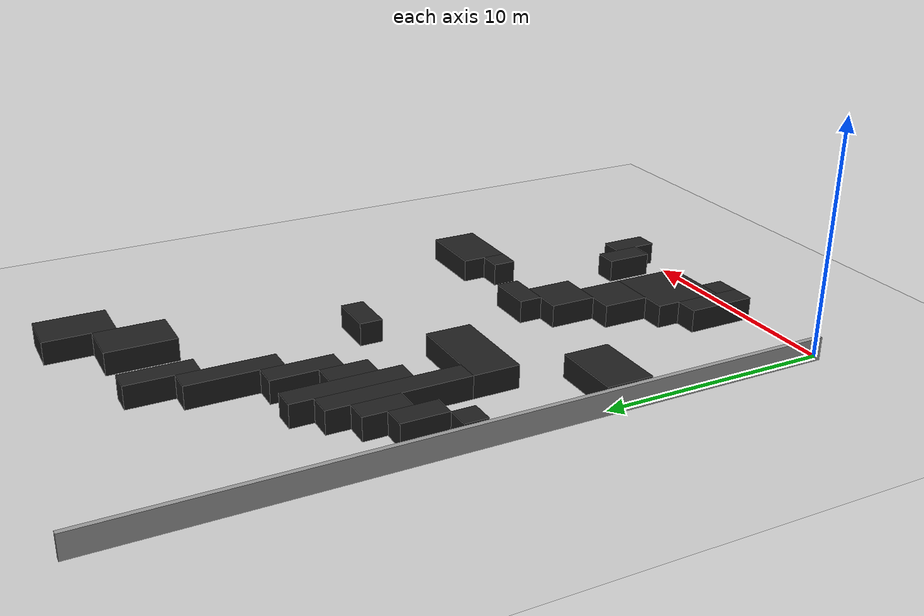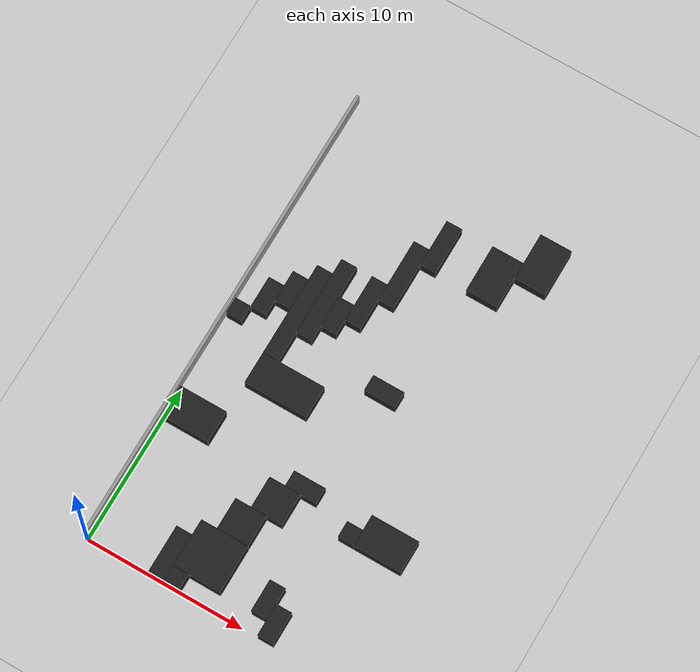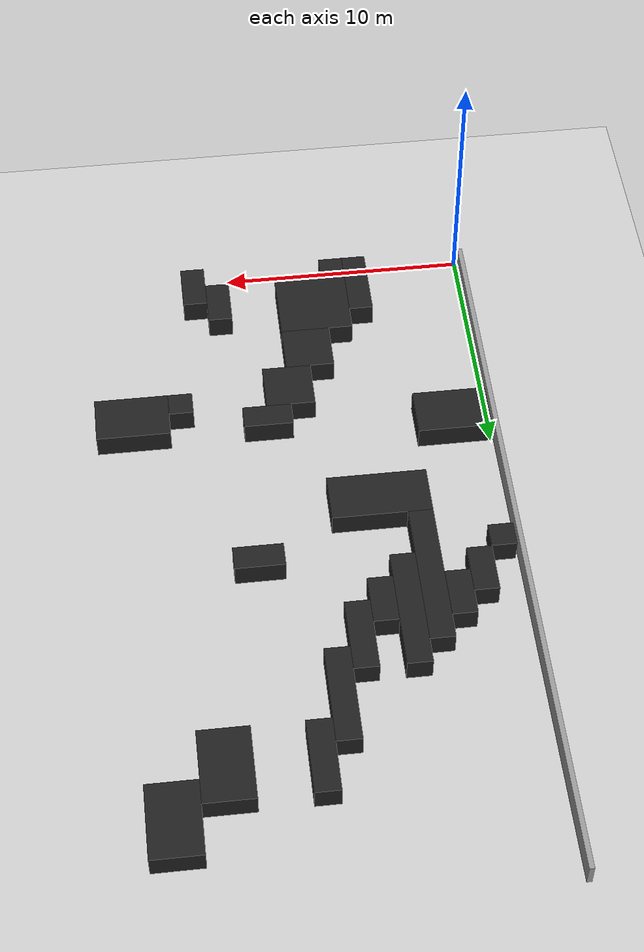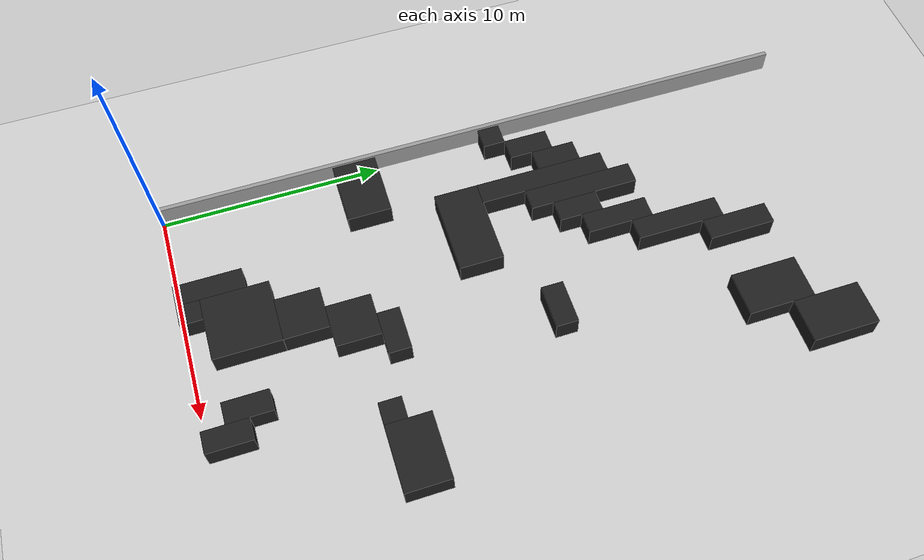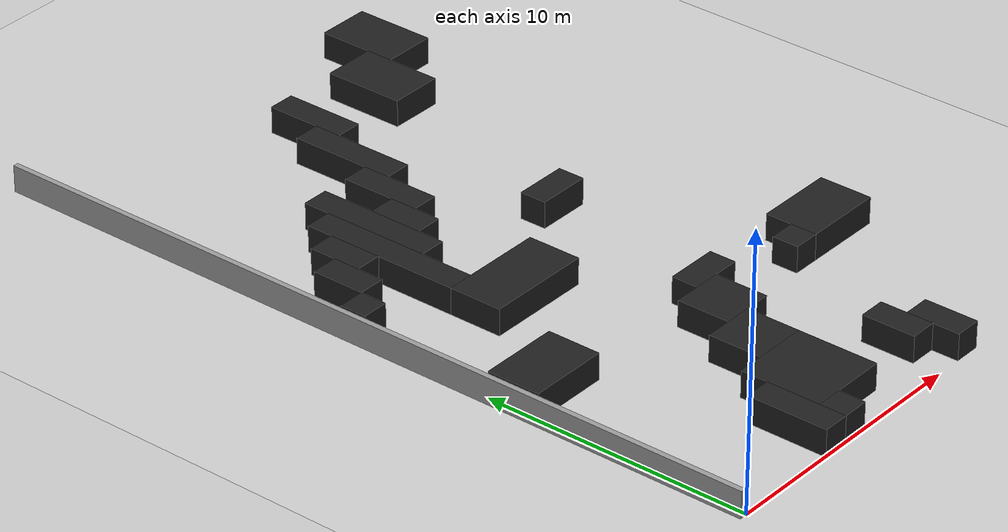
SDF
<sdf version="1.6">
 <world name="default">
  <model name="ground_plane">
   <static>1</static>
   <link name="link">
    <collision name="collision">
     <geometry><plane><normal>0 0 1</normal><size>100 100</size></plane></geometry>
     <surface><friction><ode><mu>100</mu><mu2>50</mu2></ode></friction></surface>
    </collision>
    <visual name="visual">
     <cast_shadows>0</cast_shadows>
     <geometry><plane><normal>0 0 1</normal><size>100 100</size></plane></geometry>
     <material>
      <script><uri>file://media/materials/scripts/gazebo.material</uri><name>Gazebo/Grey</name></script>
     </material>
    </visual>
   </link>
  </model>
  <model name="obstacle1">
   <link name="link_0">
    <inertial>
     <mass>1</mass>
     <inertia>
      <ixx>0.166667</ixx>
      <ixy>0</ixy>
      <ixz>0</ixz>
      <iyy>0.166667</iyy>
      <iyz>0</iyz>
      <izz>0.166667</izz>
     </inertia>
    </inertial>
    <visual name="visual">
     <geometry><box><size>1 3 1</size></box></geometry>
     <material>
      <lighting>1</lighting>
      <script><uri>file://media/materials/scripts/gazebo.material</uri><name>Gazebo/Black</name></script>
      <ambient>0 0 0 1</ambient>
      <diffuse>0 0 0 1</diffuse>
      <specular>0.01 0.01 0.01 1</specular>
      <emissive>0 0 0 1</emissive>
      <shader type="vertex"><normal_map>__default__</normal_map></shader>
     </material>
    </visual>
    <collision name="collision">
     <geometry><box><size>1 3 1</size></box></geometry>
     <surface>
      <friction>
       <ode><mu>5</mu><mu2>5</mu2><fdir1>0 0 0</fdir1><slip1>0</slip1><slip2>0</slip2></ode>
       <torsional>
        <coefficient>1</coefficient>
        <patch_radius>0</patch_radius>
        <surface_radius>0</surface_radius>
        <use_patch_radius>1</use_patch_radius>
        <ode><slip>0</slip></ode>
       </torsional>
      </friction>
      <bounce><restitution_coefficient>0</restitution_coefficient><threshold>1e+06</threshold></bounce>
      <contact>
       <collide_without_contact>0</collide_without_contact>
       <collide_without_contact_bitmask>1</collide_without_contact_bitmask>
       <collide_bitmask>1</collide_bitmask>
       <ode>
        <soft_cfm>0</soft_cfm>
        <soft_erp>0.2</soft_erp>
        <kp>1e+13</kp>
        <kd>1</kd>
        <max_vel>0.01</max_vel>
        <min_depth>0</min_depth>
       </ode>
       <bullet>
        <split_impulse>1</split_impulse>
        <split_impulse_penetration_threshold>-0.01</split_impulse_penetration_threshold>
        <soft_cfm>0</soft_cfm>
        <soft_erp>0.2</soft_erp>
        <kp>1e+13</kp>
        <kd>1</kd>
       </bullet>
      </contact>
     </surface>
    </collision>
   </link>
   <static>0</static>
   <pose>4.5 1.5 0.5 0 -0 0</pose>
  </model>
  <model name="obstacle2">
   <link name="link_0">
    <inertial>
     <mass>1</mass>
     <inertia>
      <ixx>0.166667</ixx>
      <ixy>0</ixy>
      <ixz>0</ixz>
      <iyy>0.166667</iyy>
      <iyz>0</iyz>
      <izz>0.166667</izz>
     </inertia>
    </inertial>
    <visual name="visual">
     <geometry><box><size>1 1 1</size></box></geometry>
     <material>
      <lighting>1</lighting>
      <script><uri>file://media/materials/scripts/gazebo.material</uri><name>Gazebo/Black</name></script>
      <ambient>0 0 0 1</ambient>
      <diffuse>0 0 0 1</diffuse>
      <specular>0.01 0.01 0.01 1</specular>
      <emissive>0 0 0 1</emissive>
      <shader type="vertex"><normal_map>__default__</normal_map></shader>
     </material>
    </visual>
    <collision name="collision">
     <geometry><box><size>1 1 1</size></box></geometry>
     <surface>
      <friction>
       <ode><mu>5</mu><mu2>5</mu2><fdir1>0 0 0</fdir1><slip1>0</slip1><slip2>0</slip2></ode>
       <torsional>
        <coefficient>1</coefficient>
        <patch_radius>0</patch_radius>
        <surface_radius>0</surface_radius>
        <use_patch_radius>1</use_patch_radius>
        <ode><slip>0</slip></ode>
       </torsional>
      </friction>
      <bounce><restitution_coefficient>0</restitution_coefficient><threshold>1e+06</threshold></bounce>
      <contact>
       <collide_without_contact>0</collide_without_contact>
       <collide_without_contact_bitmask>1</collide_without_contact_bitmask>
       <collide_bitmask>1</collide_bitmask>
       <ode>
        <soft_cfm>0</soft_cfm>
        <soft_erp>0.2</soft_erp>
        <kp>1e+13</kp>
        <kd>1</kd>
        <max_vel>0.01</max_vel>
        <min_depth>0</min_depth>
       </ode>
       <bullet>
        <split_impulse>1</split_impulse>
        <split_impulse_penetration_threshold>-0.01</split_impulse_penetration_threshold>
        <soft_cfm>0</soft_cfm>
        <soft_erp>0.2</soft_erp>
        <kp>1e+13</kp>
        <kd>1</kd>
       </bullet>
      </contact>
     </surface>
    </collision>
   </link>
   <static>0</static>
   <pose>5.5 0.5 0.5 0 -0 0</pose>
  </model>
  <model name="obstacle3">
   <link name="link_0">
    <inertial>
     <mass>1</mass>
     <inertia>
      <ixx>0.166667</ixx>
      <ixy>0</ixy>
      <ixz>0</ixz>
      <iyy>0.166667</iyy>
      <iyz>0</iyz>
      <izz>0.166667</izz>
     </inertia>
    </inertial>
    <visual name="visual">
     <geometry><box><size>3 3 1</size></box></geometry>
     <material>
      <lighting>1</lighting>
      <script><uri>file://media/materials/scripts/gazebo.material</uri><name>Gazebo/Black</name></script>
      <ambient>0 0 0 1</ambient>
      <diffuse>0 0 0 1</diffuse>
      <specular>0.01 0.01 0.01 1</specular>
      <emissive>0 0 0 1</emissive>
      <shader type="vertex"><normal_map>__default__</normal_map></shader>
     </material>
    </visual>
    <collision name="collision">
     <geometry><box><size>3 3 1</size></box></geometry>
     <surface>
      <friction>
       <ode><mu>5</mu><mu2>5</mu2><fdir1>0 0 0</fdir1><slip1>0</slip1><slip2>0</slip2></ode>
       <torsional>
        <coefficient>1</coefficient>
        <patch_radius>0</patch_radius>
        <surface_radius>0</surface_radius>
        <use_patch_radius>1</use_patch_radius>
        <ode><slip>0</slip></ode>
       </torsional>
      </friction>
      <bounce><restitution_coefficient>0</restitution_coefficient><threshold>1e+06</threshold></bounce>
      <contact>
       <collide_without_contact>0</collide_without_contact>
       <collide_without_contact_bitmask>1</collide_without_contact_bitmask>
       <collide_bitmask>1</collide_bitmask>
       <ode>
        <soft_cfm>0</soft_cfm>
        <soft_erp>0.2</soft_erp>
        <kp>1e+13</kp>
        <kd>1</kd>
        <max_vel>0.01</max_vel>
        <min_depth>0</min_depth>
       </ode>
       <bullet>
        <split_impulse>1</split_impulse>
        <split_impulse_penetration_threshold>-0.01</split_impulse_penetration_threshold>
        <soft_cfm>0</soft_cfm>
        <soft_erp>0.2</soft_erp>
        <kp>1e+13</kp>
        <kd>1</kd>
       </bullet>
      </contact>
     </surface>
    </collision>
   </link>
   <static>0</static>
   <pose>6.5 2.5 0.5 0 -0 0</pose>
  </model>
  <model name="obstacle4">
   <link name="link_0">
    <inertial>
     <mass>1</mass>
     <inertia>
      <ixx>0.166667</ixx>
      <ixy>0</ixy>
      <ixz>0</ixz>
      <iyy>0.166667</iyy>
      <iyz>0</iyz>
      <izz>0.166667</izz>
     </inertia>
    </inertial>
    <visual name="visual">
     <geometry><box><size>2 2 1</size></box></geometry>
     <material>
      <lighting>1</lighting>
      <script><uri>file://media/materials/scripts/gazebo.material</uri><name>Gazebo/Black</name></script>
      <ambient>0 0 0 1</ambient>
      <diffuse>0 0 0 1</diffuse>
      <specular>0.01 0.01 0.01 1</specular>
      <emissive>0 0 0 1</emissive>
      <shader type="vertex"><normal_map>__default__</normal_map></shader>
     </material>
    </visual>
    <collision name="collision">
     <geometry><box><size>2 2 1</size></box></geometry>
     <surface>
      <friction>
       <ode><mu>5</mu><mu2>5</mu2><fdir1>0 0 0</fdir1><slip1>0</slip1><slip2>0</slip2></ode>
       <torsional>
        <coefficient>1</coefficient>
        <patch_radius>0</patch_radius>
        <surface_radius>0</surface_radius>
        <use_patch_radius>1</use_patch_radius>
        <ode><slip>0</slip></ode>
       </torsional>
      </friction>
      <bounce><restitution_coefficient>0</restitution_coefficient><threshold>1e+06</threshold></bounce>
      <contact>
       <collide_without_contact>0</collide_without_contact>
       <collide_without_contact_bitmask>1</collide_without_contact_bitmask>
       <collide_bitmask>1</collide_bitmask>
       <ode>
        <soft_cfm>0</soft_cfm>
        <soft_erp>0.2</soft_erp>
        <kp>1e+13</kp>
        <kd>1</kd>
        <max_vel>0.01</max_vel>
        <min_depth>0</min_depth>
       </ode>
       <bullet>
        <split_impulse>1</split_impulse>
        <split_impulse_penetration_threshold>-0.01</split_impulse_penetration_threshold>
        <soft_cfm>0</soft_cfm>
        <soft_erp>0.2</soft_erp>
        <kp>1e+13</kp>
        <kd>1</kd>
       </bullet>
      </contact>
     </surface>
    </collision>
   </link>
   <static>0</static>
   <pose>7.0 5.0 0.5 0 -0 0</pose>
  </model>
  <model name="obstacle5">
   <link name="link_0">
    <inertial>
     <mass>1</mass>
     <inertia>
      <ixx>0.166667</ixx>
      <ixy>0</ixy>
      <ixz>0</ixz>
      <iyy>0.166667</iyy>
      <iyz>0</iyz>
      <izz>0.166667</izz>
     </inertia>
    </inertial>
    <visual name="visual">
     <geometry><box><size>2 2 1</size></box></geometry>
     <material>
      <lighting>1</lighting>
      <script><uri>file://media/materials/scripts/gazebo.material</uri><name>Gazebo/Black</name></script>
      <ambient>0 0 0 1</ambient>
      <diffuse>0 0 0 1</diffuse>
      <specular>0.01 0.01 0.01 1</specular>
      <emissive>0 0 0 1</emissive>
      <shader type="vertex"><normal_map>__default__</normal_map></shader>
     </material>
    </visual>
    <collision name="collision">
     <geometry><box><size>2 2 1</size></box></geometry>
     <surface>
      <friction>
       <ode><mu>5</mu><mu2>5</mu2><fdir1>0 0 0</fdir1><slip1>0</slip1><slip2>0</slip2></ode>
       <torsional>
        <coefficient>1</coefficient>
        <patch_radius>0</patch_radius>
        <surface_radius>0</surface_radius>
        <use_patch_radius>1</use_patch_radius>
        <ode><slip>0</slip></ode>
       </torsional>
      </friction>
      <bounce><restitution_coefficient>0</restitution_coefficient><threshold>1e+06</threshold></bounce>
      <contact>
       <collide_without_contact>0</collide_without_contact>
       <collide_without_contact_bitmask>1</collide_without_contact_bitmask>
       <collide_bitmask>1</collide_bitmask>
       <ode>
        <soft_cfm>0</soft_cfm>
        <soft_erp>0.2</soft_erp>
        <kp>1e+13</kp>
        <kd>1</kd>
        <max_vel>0.01</max_vel>
        <min_depth>0</min_depth>
       </ode>
       <bullet>
        <split_impulse>1</split_impulse>
        <split_impulse_penetration_threshold>-0.01</split_impulse_penetration_threshold>
        <soft_cfm>0</soft_cfm>
        <soft_erp>0.2</soft_erp>
        <kp>1e+13</kp>
        <kd>1</kd>
       </bullet>
      </contact>
     </surface>
    </collision>
   </link>
   <static>0</static>
   <pose>8.0 7.0 0.5 0 -0 0</pose>
  </model>
  <model name="obstacle6">
   <link name="link_0">
    <inertial>
     <mass>1</mass>
     <inertia>
      <ixx>0.166667</ixx>
      <ixy>0</ixy>
      <ixz>0</ixz>
      <iyy>0.166667</iyy>
      <iyz>0</iyz>
      <izz>0.166667</izz>
     </inertia>
    </inertial>
    <visual name="visual">
     <geometry><box><size>2 1 1</size></box></geometry>
     <material>
      <lighting>1</lighting>
      <script><uri>file://media/materials/scripts/gazebo.material</uri><name>Gazebo/Black</name></script>
      <ambient>0 0 0 1</ambient>
      <diffuse>0 0 0 1</diffuse>
      <specular>0.01 0.01 0.01 1</specular>
      <emissive>0 0 0 1</emissive>
      <shader type="vertex"><normal_map>__default__</normal_map></shader>
     </material>
    </visual>
    <collision name="collision">
     <geometry><box><size>2 1 1</size></box></geometry>
     <surface>
      <friction>
       <ode><mu>5</mu><mu2>5</mu2><fdir1>0 0 0</fdir1><slip1>0</slip1><slip2>0</slip2></ode>
       <torsional>
        <coefficient>1</coefficient>
        <patch_radius>0</patch_radius>
        <surface_radius>0</surface_radius>
        <use_patch_radius>1</use_patch_radius>
        <ode><slip>0</slip></ode>
       </torsional>
      </friction>
      <bounce><restitution_coefficient>0</restitution_coefficient><threshold>1e+06</threshold></bounce>
      <contact>
       <collide_without_contact>0</collide_without_contact>
       <collide_without_contact_bitmask>1</collide_without_contact_bitmask>
       <collide_bitmask>1</collide_bitmask>
       <ode>
        <soft_cfm>0</soft_cfm>
        <soft_erp>0.2</soft_erp>
        <kp>1e+13</kp>
        <kd>1</kd>
        <max_vel>0.01</max_vel>
        <min_depth>0</min_depth>
       </ode>
       <bullet>
        <split_impulse>1</split_impulse>
        <split_impulse_penetration_threshold>-0.01</split_impulse_penetration_threshold>
        <soft_cfm>0</soft_cfm>
        <soft_erp>0.2</soft_erp>
        <kp>1e+13</kp>
        <kd>1</kd>
       </bullet>
      </contact>
     </surface>
    </collision>
   </link>
   <static>0</static>
   <pose>9.0 8.5 0.5 0 -0 0</pose>
  </model>
  <model name="obstacle7">
   <link name="link_0">
    <inertial>
     <mass>1</mass>
     <inertia>
      <ixx>0.166667</ixx>
      <ixy>0</ixy>
      <ixz>0</ixz>
      <iyy>0.166667</iyy>
      <iyz>0</iyz>
      <izz>0.166667</izz>
     </inertia>
    </inertial>
    <visual name="visual">
     <geometry><box><size>1 2 1</size></box></geometry>
     <material>
      <lighting>1</lighting>
      <script><uri>file://media/materials/scripts/gazebo.material</uri><name>Gazebo/Black</name></script>
      <ambient>0 0 0 1</ambient>
      <diffuse>0 0 0 1</diffuse>
      <specular>0.01 0.01 0.01 1</specular>
      <emissive>0 0 0 1</emissive>
      <shader type="vertex"><normal_map>__default__</normal_map></shader>
     </material>
    </visual>
    <collision name="collision">
     <geometry><box><size>1 2 1</size></box></geometry>
     <surface>
      <friction>
       <ode><mu>5</mu><mu2>5</mu2><fdir1>0 0 0</fdir1><slip1>0</slip1><slip2>0</slip2></ode>
       <torsional>
        <coefficient>1</coefficient>
        <patch_radius>0</patch_radius>
        <surface_radius>0</surface_radius>
        <use_patch_radius>1</use_patch_radius>
        <ode><slip>0</slip></ode>
       </torsional>
      </friction>
      <bounce><restitution_coefficient>0</restitution_coefficient><threshold>1e+06</threshold></bounce>
      <contact>
       <collide_without_contact>0</collide_without_contact>
       <collide_without_contact_bitmask>1</collide_without_contact_bitmask>
       <collide_bitmask>1</collide_bitmask>
       <ode>
        <soft_cfm>0</soft_cfm>
        <soft_erp>0.2</soft_erp>
        <kp>1e+13</kp>
        <kd>1</kd>
        <max_vel>0.01</max_vel>
        <min_depth>0</min_depth>
       </ode>
       <bullet>
        <split_impulse>1</split_impulse>
        <split_impulse_penetration_threshold>-0.01</split_impulse_penetration_threshold>
        <soft_cfm>0</soft_cfm>
        <soft_erp>0.2</soft_erp>
        <kp>1e+13</kp>
        <kd>1</kd>
       </bullet>
      </contact>
     </surface>
    </collision>
   </link>
   <static>0</static>
   <pose>10.5 2.0 0.5 0 -0 0</pose>
  </model>
  <model name="obstacle8">
   <link name="link_0">
    <inertial>
     <mass>1</mass>
     <inertia>
      <ixx>0.166667</ixx>
      <ixy>0</ixy>
      <ixz>0</ixz>
      <iyy>0.166667</iyy>
      <iyz>0</iyz>
      <izz>0.166667</izz>
     </inertia>
    </inertial>
    <visual name="visual">
     <geometry><box><size>1 2 1</size></box></geometry>
     <material>
      <lighting>1</lighting>
      <script><uri>file://media/materials/scripts/gazebo.material</uri><name>Gazebo/Black</name></script>
      <ambient>0 0 0 1</ambient>
      <diffuse>0 0 0 1</diffuse>
      <specular>0.01 0.01 0.01 1</specular>
      <emissive>0 0 0 1</emissive>
      <shader type="vertex"><normal_map>__default__</normal_map></shader>
     </material>
    </visual>
    <collision name="collision">
     <geometry><box><size>1 2 1</size></box></geometry>
     <surface>
      <friction>
       <ode><mu>5</mu><mu2>5</mu2><fdir1>0 0 0</fdir1><slip1>0</slip1><slip2>0</slip2></ode>
       <torsional>
        <coefficient>1</coefficient>
        <patch_radius>0</patch_radius>
        <surface_radius>0</surface_radius>
        <use_patch_radius>1</use_patch_radius>
        <ode><slip>0</slip></ode>
       </torsional>
      </friction>
      <bounce><restitution_coefficient>0</restitution_coefficient><threshold>1e+06</threshold></bounce>
      <contact>
       <collide_without_contact>0</collide_without_contact>
       <collide_without_contact_bitmask>1</collide_without_contact_bitmask>
       <collide_bitmask>1</collide_bitmask>
       <ode>
        <soft_cfm>0</soft_cfm>
        <soft_erp>0.2</soft_erp>
        <kp>1e+13</kp>
        <kd>1</kd>
        <max_vel>0.01</max_vel>
        <min_depth>0</min_depth>
       </ode>
       <bullet>
        <split_impulse>1</split_impulse>
        <split_impulse_penetration_threshold>-0.01</split_impulse_penetration_threshold>
        <soft_cfm>0</soft_cfm>
        <soft_erp>0.2</soft_erp>
        <kp>1e+13</kp>
        <kd>1</kd>
       </bullet>
      </contact>
     </surface>
    </collision>
   </link>
   <static>0</static>
   <pose>11.5 1.0 0.5 0 -0 0</pose>
  </model>
  <model name="obstacle11">
   <link name="link_0">
    <inertial>
     <mass>1</mass>
     <inertia>
      <ixx>0.166667</ixx>
      <ixy>0</ixy>
      <ixz>0</ixz>
      <iyy>0.166667</iyy>
      <iyz>0</iyz>
      <izz>0.166667</izz>
     </inertia>
    </inertial>
    <visual name="visual">
     <geometry><box><size>3 2 1</size></box></geometry>
     <material>
      <lighting>1</lighting>
      <script><uri>file://media/materials/scripts/gazebo.material</uri><name>Gazebo/Black</name></script>
      <ambient>0 0 0 1</ambient>
      <diffuse>0 0 0 1</diffuse>
      <specular>0.01 0.01 0.01 1</specular>
      <emissive>0 0 0 1</emissive>
      <shader type="vertex"><normal_map>__default__</normal_map></shader>
     </material>
    </visual>
    <collision name="collision">
     <geometry><box><size>3 2 1</size></box></geometry>
     <surface>
      <friction>
       <ode><mu>5</mu><mu2>5</mu2><fdir1>0 0 0</fdir1><slip1>0</slip1><slip2>0</slip2></ode>
       <torsional>
        <coefficient>1</coefficient>
        <patch_radius>0</patch_radius>
        <surface_radius>0</surface_radius>
        <use_patch_radius>1</use_patch_radius>
        <ode><slip>0</slip></ode>
       </torsional>
      </friction>
      <bounce><restitution_coefficient>0</restitution_coefficient><threshold>1e+06</threshold></bounce>
      <contact>
       <collide_without_contact>0</collide_without_contact>
       <collide_without_contact_bitmask>1</collide_without_contact_bitmask>
       <collide_bitmask>1</collide_bitmask>
       <ode>
        <soft_cfm>0</soft_cfm>
        <soft_erp>0.2</soft_erp>
        <kp>1e+13</kp>
        <kd>1</kd>
        <max_vel>0.01</max_vel>
        <min_depth>0</min_depth>
       </ode>
       <bullet>
        <split_impulse>1</split_impulse>
        <split_impulse_penetration_threshold>-0.01</split_impulse_penetration_threshold>
        <soft_cfm>0</soft_cfm>
        <soft_erp>0.2</soft_erp>
        <kp>1e+13</kp>
        <kd>1</kd>
       </bullet>
      </contact>
     </surface>
    </collision>
   </link>
   <static>0</static>
   <pose>1.5 9.0 0.5 0 -0 0</pose>
  </model>
  <model name="obstacle12">
   <link name="link_0">
    <inertial>
     <mass>1</mass>
     <inertia>
      <ixx>0.166667</ixx>
      <ixy>0</ixy>
      <ixz>0</ixz>
      <iyy>0.166667</iyy>
      <iyz>0</iyz>
      <izz>0.166667</izz>
     </inertia>
    </inertial>
    <visual name="visual">
     <geometry><box><size>1 1 1</size></box></geometry>
     <material>
      <lighting>1</lighting>
      <script><uri>file://media/materials/scripts/gazebo.material</uri><name>Gazebo/Black</name></script>
      <ambient>0 0 0 1</ambient>
      <diffuse>0 0 0 1</diffuse>
      <specular>0.01 0.01 0.01 1</specular>
      <emissive>0 0 0 1</emissive>
      <shader type="vertex"><normal_map>__default__</normal_map></shader>
     </material>
    </visual>
    <collision name="collision">
     <geometry><box><size>1 1 1</size></box></geometry>
     <surface>
      <friction>
       <ode><mu>5</mu><mu2>5</mu2><fdir1>0 0 0</fdir1><slip1>0</slip1><slip2>0</slip2></ode>
       <torsional>
        <coefficient>1</coefficient>
        <patch_radius>0</patch_radius>
        <surface_radius>0</surface_radius>
        <use_patch_radius>1</use_patch_radius>
        <ode><slip>0</slip></ode>
       </torsional>
      </friction>
      <bounce><restitution_coefficient>0</restitution_coefficient><threshold>1e+06</threshold></bounce>
      <contact>
       <collide_without_contact>0</collide_without_contact>
       <collide_without_contact_bitmask>1</collide_without_contact_bitmask>
       <collide_bitmask>1</collide_bitmask>
       <ode>
        <soft_cfm>0</soft_cfm>
        <soft_erp>0.2</soft_erp>
        <kp>1e+13</kp>
        <kd>1</kd>
        <max_vel>0.01</max_vel>
        <min_depth>0</min_depth>
       </ode>
       <bullet>
        <split_impulse>1</split_impulse>
        <split_impulse_penetration_threshold>-0.01</split_impulse_penetration_threshold>
        <soft_cfm>0</soft_cfm>
        <soft_erp>0.2</soft_erp>
        <kp>1e+13</kp>
        <kd>1</kd>
       </bullet>
      </contact>
     </surface>
    </collision>
   </link>
   <static>0</static>
   <pose>12.5 7.5 0.5 0 -0 0</pose>
  </model>
  <model name="obstacle13">
   <link name="link_0">
    <inertial>
     <mass>1</mass>
     <inertia>
      <ixx>0.166667</ixx>
      <ixy>0</ixy>
      <ixz>0</ixz>
      <iyy>0.166667</iyy>
      <iyz>0</iyz>
      <izz>0.166667</izz>
     </inertia>
    </inertial>
    <visual name="visual">
     <geometry><box><size>3 2 1</size></box></geometry>
     <material>
      <lighting>1</lighting>
      <script><uri>file://media/materials/scripts/gazebo.material</uri><name>Gazebo/Black</name></script>
      <ambient>0 0 0 1</ambient>
      <diffuse>0 0 0 1</diffuse>
      <specular>0.01 0.01 0.01 1</specular>
      <emissive>0 0 0 1</emissive>
      <shader type="vertex"><normal_map>__default__</normal_map></shader>
     </material>
    </visual>
    <collision name="collision">
     <geometry><box><size>3 2 1</size></box></geometry>
     <surface>
      <friction>
       <ode><mu>5</mu><mu2>5</mu2><fdir1>0 0 0</fdir1><slip1>0</slip1><slip2>0</slip2></ode>
       <torsional>
        <coefficient>1</coefficient>
        <patch_radius>0</patch_radius>
        <surface_radius>0</surface_radius>
        <use_patch_radius>1</use_patch_radius>
        <ode><slip>0</slip></ode>
       </torsional>
      </friction>
      <bounce><restitution_coefficient>0</restitution_coefficient><threshold>1e+06</threshold></bounce>
      <contact>
       <collide_without_contact>0</collide_without_contact>
       <collide_without_contact_bitmask>1</collide_without_contact_bitmask>
       <collide_bitmask>1</collide_bitmask>
       <ode>
        <soft_cfm>0</soft_cfm>
        <soft_erp>0.2</soft_erp>
        <kp>1e+13</kp>
        <kd>1</kd>
        <max_vel>0.01</max_vel>
        <min_depth>0</min_depth>
       </ode>
       <bullet>
        <split_impulse>1</split_impulse>
        <split_impulse_penetration_threshold>-0.01</split_impulse_penetration_threshold>
        <soft_cfm>0</soft_cfm>
        <soft_erp>0.2</soft_erp>
        <kp>1e+13</kp>
        <kd>1</kd>
       </bullet>
      </contact>
     </surface>
    </collision>
   </link>
   <static>0</static>
   <pose>14.5 8.0 0.5 0 -0 0</pose>
  </model>
  <model name="obstacle16">
   <link name="link_0">
    <inertial>
     <mass>1</mass>
     <inertia>
      <ixx>0.166667</ixx>
      <ixy>0</ixy>
      <ixz>0</ixz>
      <iyy>0.166667</iyy>
      <iyz>0</iyz>
      <izz>0.166667</izz>
     </inertia>
    </inertial>
    <visual name="visual">
     <geometry><box><size>1 1 1</size></box></geometry>
     <material>
      <lighting>1</lighting>
      <script><uri>file://media/materials/scripts/gazebo.material</uri><name>Gazebo/Black</name></script>
      <ambient>0 0 0 1</ambient>
      <diffuse>0 0 0 1</diffuse>
      <specular>0.01 0.01 0.01 1</specular>
      <emissive>0 0 0 1</emissive>
      <shader type="vertex"><normal_map>__default__</normal_map></shader>
     </material>
    </visual>
    <collision name="collision">
     <geometry><box><size>1 1 1</size></box></geometry>
     <surface>
      <friction>
       <ode><mu>5</mu><mu2>5</mu2><fdir1>0 0 0</fdir1><slip1>0</slip1><slip2>0</slip2></ode>
       <torsional>
        <coefficient>1</coefficient>
        <patch_radius>0</patch_radius>
        <surface_radius>0</surface_radius>
        <use_patch_radius>1</use_patch_radius>
        <ode><slip>0</slip></ode>
       </torsional>
      </friction>
      <bounce><restitution_coefficient>0</restitution_coefficient><threshold>1e+06</threshold></bounce>
      <contact>
       <collide_without_contact>0</collide_without_contact>
       <collide_without_contact_bitmask>1</collide_without_contact_bitmask>
       <collide_bitmask>1</collide_bitmask>
       <ode>
        <soft_cfm>0</soft_cfm>
        <soft_erp>0.2</soft_erp>
        <kp>1e+13</kp>
        <kd>1</kd>
        <max_vel>0.01</max_vel>
        <min_depth>0</min_depth>
       </ode>
       <bullet>
        <split_impulse>1</split_impulse>
        <split_impulse_penetration_threshold>-0.01</split_impulse_penetration_threshold>
        <soft_cfm>0</soft_cfm>
        <soft_erp>0.2</soft_erp>
        <kp>1e+13</kp>
        <kd>1</kd>
       </bullet>
      </contact>
     </surface>
    </collision>
   </link>
   <static>0</static>
   <pose>0.5 15.5 0.5 0 -0 0</pose>
  </model>
  <model name="obstacle17">
   <link name="link_0">
    <inertial>
     <mass>1</mass>
     <inertia>
      <ixx>0.166667</ixx>
      <ixy>0</ixy>
      <ixz>0</ixz>
      <iyy>0.166667</iyy>
      <iyz>0</iyz>
      <izz>0.166667</izz>
     </inertia>
    </inertial>
    <visual name="visual">
     <geometry><box><size>1 2 1</size></box></geometry>
     <material>
      <lighting>1</lighting>
      <script><uri>file://media/materials/scripts/gazebo.material</uri><name>Gazebo/Black</name></script>
      <ambient>0 0 0 1</ambient>
      <diffuse>0 0 0 1</diffuse>
      <specular>0.01 0.01 0.01 1</specular>
      <emissive>0 0 0 1</emissive>
      <shader type="vertex"><normal_map>__default__</normal_map></shader>
     </material>
    </visual>
    <collision name="collision">
     <geometry><box><size>1 2 1</size></box></geometry>
     <surface>
      <friction>
       <ode><mu>5</mu><mu2>5</mu2><fdir1>0 0 0</fdir1><slip1>0</slip1><slip2>0</slip2></ode>
       <torsional>
        <coefficient>1</coefficient>
        <patch_radius>0</patch_radius>
        <surface_radius>0</surface_radius>
        <use_patch_radius>1</use_patch_radius>
        <ode><slip>0</slip></ode>
       </torsional>
      </friction>
      <bounce><restitution_coefficient>0</restitution_coefficient><threshold>1e+06</threshold></bounce>
      <contact>
       <collide_without_contact>0</collide_without_contact>
       <collide_without_contact_bitmask>1</collide_without_contact_bitmask>
       <collide_bitmask>1</collide_bitmask>
       <ode>
        <soft_cfm>0</soft_cfm>
        <soft_erp>0.2</soft_erp>
        <kp>1e+13</kp>
        <kd>1</kd>
        <max_vel>0.01</max_vel>
        <min_depth>0</min_depth>
       </ode>
       <bullet>
        <split_impulse>1</split_impulse>
        <split_impulse_penetration_threshold>-0.01</split_impulse_penetration_threshold>
        <soft_cfm>0</soft_cfm>
        <soft_erp>0.2</soft_erp>
        <kp>1e+13</kp>
        <kd>1</kd>
       </bullet>
      </contact>
     </surface>
    </collision>
   </link>
   <static>0</static>
   <pose>1.5 17.0 0.5 0 -0 0</pose>
  </model>
  <model name="obstacle18">
   <link name="link_0">
    <inertial>
     <mass>1</mass>
     <inertia>
      <ixx>0.166667</ixx>
      <ixy>0</ixy>
      <ixz>0</ixz>
      <iyy>0.166667</iyy>
      <iyz>0</iyz>
      <izz>0.166667</izz>
     </inertia>
    </inertial>
    <visual name="visual">
     <geometry><box><size>1 2 1</size></box></geometry>
     <material>
      <lighting>1</lighting>
      <script><uri>file://media/materials/scripts/gazebo.material</uri><name>Gazebo/Black</name></script>
      <ambient>0 0 0 1</ambient>
      <diffuse>0 0 0 1</diffuse>
      <specular>0.01 0.01 0.01 1</specular>
      <emissive>0 0 0 1</emissive>
      <shader type="vertex"><normal_map>__default__</normal_map></shader>
     </material>
    </visual>
    <collision name="collision">
     <geometry><box><size>1 2 1</size></box></geometry>
     <surface>
      <friction>
       <ode><mu>5</mu><mu2>5</mu2><fdir1>0 0 0</fdir1><slip1>0</slip1><slip2>0</slip2></ode>
       <torsional>
        <coefficient>1</coefficient>
        <patch_radius>0</patch_radius>
        <surface_radius>0</surface_radius>
        <use_patch_radius>1</use_patch_radius>
        <ode><slip>0</slip></ode>
       </torsional>
      </friction>
      <bounce><restitution_coefficient>0</restitution_coefficient><threshold>1e+06</threshold></bounce>
      <contact>
       <collide_without_contact>0</collide_without_contact>
       <collide_without_contact_bitmask>1</collide_without_contact_bitmask>
       <collide_bitmask>1</collide_bitmask>
       <ode>
        <soft_cfm>0</soft_cfm>
        <soft_erp>0.2</soft_erp>
        <kp>1e+13</kp>
        <kd>1</kd>
        <max_vel>0.01</max_vel>
        <min_depth>0</min_depth>
       </ode>
       <bullet>
        <split_impulse>1</split_impulse>
        <split_impulse_penetration_threshold>-0.01</split_impulse_penetration_threshold>
        <soft_cfm>0</soft_cfm>
        <soft_erp>0.2</soft_erp>
        <kp>1e+13</kp>
        <kd>1</kd>
       </bullet>
      </contact>
     </surface>
    </collision>
   </link>
   <static>0</static>
   <pose>2.5 18.0 0.5 0 -0 0</pose>
  </model>
  <model name="obstacle19">
   <link name="link_0">
    <inertial>
     <mass>1</mass>
     <inertia>
      <ixx>0.166667</ixx>
      <ixy>0</ixy>
      <ixz>0</ixz>
      <iyy>0.166667</iyy>
      <iyz>0</iyz>
      <izz>0.166667</izz>
     </inertia>
    </inertial>
    <visual name="visual">
     <geometry><box><size>4 2 1</size></box></geometry>
     <material>
      <lighting>1</lighting>
      <script><uri>file://media/materials/scripts/gazebo.material</uri><name>Gazebo/Black</name></script>
      <ambient>0 0 0 1</ambient>
      <diffuse>0 0 0 1</diffuse>
      <specular>0.01 0.01 0.01 1</specular>
      <emissive>0 0 0 1</emissive>
      <shader type="vertex"><normal_map>__default__</normal_map></shader>
     </material>
    </visual>
    <collision name="collision">
     <geometry><box><size>4 2 1</size></box></geometry>
     <surface>
      <friction>
       <ode><mu>5</mu><mu2>5</mu2><fdir1>0 0 0</fdir1><slip1>0</slip1><slip2>0</slip2></ode>
       <torsional>
        <coefficient>1</coefficient>
        <patch_radius>0</patch_radius>
        <surface_radius>0</surface_radius>
        <use_patch_radius>1</use_patch_radius>
        <ode><slip>0</slip></ode>
       </torsional>
      </friction>
      <bounce><restitution_coefficient>0</restitution_coefficient><threshold>1e+06</threshold></bounce>
      <contact>
       <collide_without_contact>0</collide_without_contact>
       <collide_without_contact_bitmask>1</collide_without_contact_bitmask>
       <collide_bitmask>1</collide_bitmask>
       <ode>
        <soft_cfm>0</soft_cfm>
        <soft_erp>0.2</soft_erp>
        <kp>1e+13</kp>
        <kd>1</kd>
        <max_vel>0.01</max_vel>
        <min_depth>0</min_depth>
       </ode>
       <bullet>
        <split_impulse>1</split_impulse>
        <split_impulse_penetration_threshold>-0.01</split_impulse_penetration_threshold>
        <soft_cfm>0</soft_cfm>
        <soft_erp>0.2</soft_erp>
        <kp>1e+13</kp>
        <kd>1</kd>
       </bullet>
      </contact>
     </surface>
    </collision>
   </link>
   <static>0</static>
   <pose>5.0 13.0 0.5 0 -0 0</pose>
  </model>
  <model name="obstacle20">
   <link name="link_0">
    <inertial>
     <mass>1</mass>
     <inertia>
      <ixx>0.166667</ixx>
      <ixy>0</ixy>
      <ixz>0</ixz>
      <iyy>0.166667</iyy>
      <iyz>0</iyz>
      <izz>0.166667</izz>
     </inertia>
    </inertial>
    <visual name="visual">
     <geometry><box><size>1 6 1</size></box></geometry>
     <material>
      <lighting>1</lighting>
      <script><uri>file://media/materials/scripts/gazebo.material</uri><name>Gazebo/Black</name></script>
      <ambient>0 0 0 1</ambient>
      <diffuse>0 0 0 1</diffuse>
      <specular>0.01 0.01 0.01 1</specular>
      <emissive>0 0 0 1</emissive>
      <shader type="vertex"><normal_map>__default__</normal_map></shader>
     </material>
    </visual>
    <collision name="collision">
     <geometry><box><size>1 6 1</size></box></geometry>
     <surface>
      <friction>
       <ode><mu>5</mu><mu2>5</mu2><fdir1>0 0 0</fdir1><slip1>0</slip1><slip2>0</slip2></ode>
       <torsional>
        <coefficient>1</coefficient>
        <patch_radius>0</patch_radius>
        <surface_radius>0</surface_radius>
        <use_patch_radius>1</use_patch_radius>
        <ode><slip>0</slip></ode>
       </torsional>
      </friction>
      <bounce><restitution_coefficient>0</restitution_coefficient><threshold>1e+06</threshold></bounce>
      <contact>
       <collide_without_contact>0</collide_without_contact>
       <collide_without_contact_bitmask>1</collide_without_contact_bitmask>
       <collide_bitmask>1</collide_bitmask>
       <ode>
        <soft_cfm>0</soft_cfm>
        <soft_erp>0.2</soft_erp>
        <kp>1e+13</kp>
        <kd>1</kd>
        <max_vel>0.01</max_vel>
        <min_depth>0</min_depth>
       </ode>
       <bullet>
        <split_impulse>1</split_impulse>
        <split_impulse_penetration_threshold>-0.01</split_impulse_penetration_threshold>
        <soft_cfm>0</soft_cfm>
        <soft_erp>0.2</soft_erp>
        <kp>1e+13</kp>
        <kd>1</kd>
       </bullet>
      </contact>
     </surface>
    </collision>
   </link>
   <static>0</static>
   <pose>3.5 17.0 0.5 0 -0 0</pose>
  </model>
  <model name="obstacle21">
   <link name="link_0">
    <inertial>
     <mass>1</mass>
     <inertia>
      <ixx>0.166667</ixx>
      <ixy>0</ixy>
      <ixz>0</ixz>
      <iyy>0.166667</iyy>
      <iyz>0</iyz>
      <izz>0.166667</izz>
     </inertia>
    </inertial>
    <visual name="visual">
     <geometry><box><size>1 5 1</size></box></geometry>
     <material>
      <lighting>1</lighting>
      <script><uri>file://media/materials/scripts/gazebo.material</uri><name>Gazebo/Black</name></script>
      <ambient>0 0 0 1</ambient>
      <diffuse>0 0 0 1</diffuse>
      <specular>0.01 0.01 0.01 1</specular>
      <emissive>0 0 0 1</emissive>
      <shader type="vertex"><normal_map>__default__</normal_map></shader>
     </material>
    </visual>
    <collision name="collision">
     <geometry><box><size>1 5 1</size></box></geometry>
     <surface>
      <friction>
       <ode><mu>5</mu><mu2>5</mu2><fdir1>0 0 0</fdir1><slip1>0</slip1><slip2>0</slip2></ode>
       <torsional>
        <coefficient>1</coefficient>
        <patch_radius>0</patch_radius>
        <surface_radius>0</surface_radius>
        <use_patch_radius>1</use_patch_radius>
        <ode><slip>0</slip></ode>
       </torsional>
      </friction>
      <bounce><restitution_coefficient>0</restitution_coefficient><threshold>1e+06</threshold></bounce>
      <contact>
       <collide_without_contact>0</collide_without_contact>
       <collide_without_contact_bitmask>1</collide_without_contact_bitmask>
       <collide_bitmask>1</collide_bitmask>
       <ode>
        <soft_cfm>0</soft_cfm>
        <soft_erp>0.2</soft_erp>
        <kp>1e+13</kp>
        <kd>1</kd>
        <max_vel>0.01</max_vel>
        <min_depth>0</min_depth>
       </ode>
       <bullet>
        <split_impulse>1</split_impulse>
        <split_impulse_penetration_threshold>-0.01</split_impulse_penetration_threshold>
        <soft_cfm>0</soft_cfm>
        <soft_erp>0.2</soft_erp>
        <kp>1e+13</kp>
        <kd>1</kd>
       </bullet>
      </contact>
     </surface>
    </collision>
   </link>
   <static>0</static>
   <pose>4.5 18.5 0.5 0 -0 0</pose>
  </model>
  <model name="obstacle22">
   <link name="link_0">
    <inertial>
     <mass>1</mass>
     <inertia>
      <ixx>0.166667</ixx>
      <ixy>0</ixy>
      <ixz>0</ixz>
      <iyy>0.166667</iyy>
      <iyz>0</iyz>
      <izz>0.166667</izz>
     </inertia>
    </inertial>
    <visual name="visual">
     <geometry><box><size>1 2 1</size></box></geometry>
     <material>
      <lighting>1</lighting>
      <script><uri>file://media/materials/scripts/gazebo.material</uri><name>Gazebo/Black</name></script>
      <ambient>0 0 0 1</ambient>
      <diffuse>0 0 0 1</diffuse>
      <specular>0.01 0.01 0.01 1</specular>
      <emissive>0 0 0 1</emissive>
      <shader type="vertex"><normal_map>__default__</normal_map></shader>
     </material>
    </visual>
    <collision name="collision">
     <geometry><box><size>1 2 1</size></box></geometry>
     <surface>
      <friction>
       <ode><mu>5</mu><mu2>5</mu2><fdir1>0 0 0</fdir1><slip1>0</slip1><slip2>0</slip2></ode>
       <torsional>
        <coefficient>1</coefficient>
        <patch_radius>0</patch_radius>
        <surface_radius>0</surface_radius>
        <use_patch_radius>1</use_patch_radius>
        <ode><slip>0</slip></ode>
       </torsional>
      </friction>
      <bounce><restitution_coefficient>0</restitution_coefficient><threshold>1e+06</threshold></bounce>
      <contact>
       <collide_without_contact>0</collide_without_contact>
       <collide_without_contact_bitmask>1</collide_without_contact_bitmask>
       <collide_bitmask>1</collide_bitmask>
       <ode>
        <soft_cfm>0</soft_cfm>
        <soft_erp>0.2</soft_erp>
        <kp>1e+13</kp>
        <kd>1</kd>
        <max_vel>0.01</max_vel>
        <min_depth>0</min_depth>
       </ode>
       <bullet>
        <split_impulse>1</split_impulse>
        <split_impulse_penetration_threshold>-0.01</split_impulse_penetration_threshold>
        <soft_cfm>0</soft_cfm>
        <soft_erp>0.2</soft_erp>
        <kp>1e+13</kp>
        <kd>1</kd>
       </bullet>
      </contact>
     </surface>
    </collision>
   </link>
   <static>0</static>
   <pose>5.5 18.0 0.5 0 -0 0</pose>
  </model>
  <model name="obstacle23">
   <link name="link_0">
    <inertial>
     <mass>1</mass>
     <inertia>
      <ixx>0.166667</ixx>
      <ixy>0</ixy>
      <ixz>0</ixz>
      <iyy>0.166667</iyy>
      <iyz>0</iyz>
      <izz>0.166667</izz>
     </inertia>
    </inertial>
    <visual name="visual">
     <geometry><box><size>1 3 1</size></box></geometry>
     <material>
      <lighting>1</lighting>
      <script><uri>file://media/materials/scripts/gazebo.material</uri><name>Gazebo/Black</name></script>
      <ambient>0 0 0 1</ambient>
      <diffuse>0 0 0 1</diffuse>
      <specular>0.01 0.01 0.01 1</specular>
      <emissive>0 0 0 1</emissive>
      <shader type="vertex"><normal_map>__default__</normal_map></shader>
     </material>
    </visual>
    <collision name="collision">
     <geometry><box><size>1 3 1</size></box></geometry>
     <surface>
      <friction>
       <ode><mu>5</mu><mu2>5</mu2><fdir1>0 0 0</fdir1><slip1>0</slip1><slip2>0</slip2></ode>
       <torsional>
        <coefficient>1</coefficient>
        <patch_radius>0</patch_radius>
        <surface_radius>0</surface_radius>
        <use_patch_radius>1</use_patch_radius>
        <ode><slip>0</slip></ode>
       </torsional>
      </friction>
      <bounce><restitution_coefficient>0</restitution_coefficient><threshold>1e+06</threshold></bounce>
      <contact>
       <collide_without_contact>0</collide_without_contact>
       <collide_without_contact_bitmask>1</collide_without_contact_bitmask>
       <collide_bitmask>1</collide_bitmask>
       <ode>
        <soft_cfm>0</soft_cfm>
        <soft_erp>0.2</soft_erp>
        <kp>1e+13</kp>
        <kd>1</kd>
        <max_vel>0.01</max_vel>
        <min_depth>0</min_depth>
       </ode>
       <bullet>
        <split_impulse>1</split_impulse>
        <split_impulse_penetration_threshold>-0.01</split_impulse_penetration_threshold>
        <soft_cfm>0</soft_cfm>
        <soft_erp>0.2</soft_erp>
        <kp>1e+13</kp>
        <kd>1</kd>
       </bullet>
      </contact>
     </surface>
    </collision>
   </link>
   <static>0</static>
   <pose>6.5 19.5 0.5 0 -0 0</pose>
  </model>
  <model name="obstacle24">
   <link name="link_0">
    <inertial>
     <mass>1</mass>
     <inertia>
      <ixx>0.166667</ixx>
      <ixy>0</ixy>
      <ixz>0</ixz>
      <iyy>0.166667</iyy>
      <iyz>0</iyz>
      <izz>0.166667</izz>
     </inertia>
    </inertial>
    <visual name="visual">
     <geometry><box><size>1 4 1</size></box></geometry>
     <material>
      <lighting>1</lighting>
      <script><uri>file://media/materials/scripts/gazebo.material</uri><name>Gazebo/Black</name></script>
      <ambient>0 0 0 1</ambient>
      <diffuse>0 0 0 1</diffuse>
      <specular>0.01 0.01 0.01 1</specular>
      <emissive>0 0 0 1</emissive>
      <shader type="vertex"><normal_map>__default__</normal_map></shader>
     </material>
    </visual>
    <collision name="collision">
     <geometry><box><size>1 4 1</size></box></geometry>
     <surface>
      <friction>
       <ode><mu>5</mu><mu2>5</mu2><fdir1>0 0 0</fdir1><slip1>0</slip1><slip2>0</slip2></ode>
       <torsional>
        <coefficient>1</coefficient>
        <patch_radius>0</patch_radius>
        <surface_radius>0</surface_radius>
        <use_patch_radius>1</use_patch_radius>
        <ode><slip>0</slip></ode>
       </torsional>
      </friction>
      <bounce><restitution_coefficient>0</restitution_coefficient><threshold>1e+06</threshold></bounce>
      <contact>
       <collide_without_contact>0</collide_without_contact>
       <collide_without_contact_bitmask>1</collide_without_contact_bitmask>
       <collide_bitmask>1</collide_bitmask>
       <ode>
        <soft_cfm>0</soft_cfm>
        <soft_erp>0.2</soft_erp>
        <kp>1e+13</kp>
        <kd>1</kd>
        <max_vel>0.01</max_vel>
        <min_depth>0</min_depth>
       </ode>
       <bullet>
        <split_impulse>1</split_impulse>
        <split_impulse_penetration_threshold>-0.01</split_impulse_penetration_threshold>
        <soft_cfm>0</soft_cfm>
        <soft_erp>0.2</soft_erp>
        <kp>1e+13</kp>
        <kd>1</kd>
       </bullet>
      </contact>
     </surface>
    </collision>
   </link>
   <static>0</static>
   <pose>7.5 22.0 0.5 0 -0 0</pose>
  </model>
  <model name="obstacle25">
   <link name="link_0">
    <inertial>
     <mass>1</mass>
     <inertia>
      <ixx>0.166667</ixx>
      <ixy>0</ixy>
      <ixz>0</ixz>
      <iyy>0.166667</iyy>
      <iyz>0</iyz>
      <izz>0.166667</izz>
     </inertia>
    </inertial>
    <visual name="visual">
     <geometry><box><size>1 3 1</size></box></geometry>
     <material>
      <lighting>1</lighting>
      <script><uri>file://media/materials/scripts/gazebo.material</uri><name>Gazebo/Black</name></script>
      <ambient>0 0 0 1</ambient>
      <diffuse>0 0 0 1</diffuse>
      <specular>0.01 0.01 0.01 1</specular>
      <emissive>0 0 0 1</emissive>
      <shader type="vertex"><normal_map>__default__</normal_map></shader>
     </material>
    </visual>
    <collision name="collision">
     <geometry><box><size>1 3 1</size></box></geometry>
     <surface>
      <friction>
       <ode><mu>5</mu><mu2>5</mu2><fdir1>0 0 0</fdir1><slip1>0</slip1><slip2>0</slip2></ode>
       <torsional>
        <coefficient>1</coefficient>
        <patch_radius>0</patch_radius>
        <surface_radius>0</surface_radius>
        <use_patch_radius>1</use_patch_radius>
        <ode><slip>0</slip></ode>
       </torsional>
      </friction>
      <bounce><restitution_coefficient>0</restitution_coefficient><threshold>1e+06</threshold></bounce>
      <contact>
       <collide_without_contact>0</collide_without_contact>
       <collide_without_contact_bitmask>1</collide_without_contact_bitmask>
       <collide_bitmask>1</collide_bitmask>
       <ode>
        <soft_cfm>0</soft_cfm>
        <soft_erp>0.2</soft_erp>
        <kp>1e+13</kp>
        <kd>1</kd>
        <max_vel>0.01</max_vel>
        <min_depth>0</min_depth>
       </ode>
       <bullet>
        <split_impulse>1</split_impulse>
        <split_impulse_penetration_threshold>-0.01</split_impulse_penetration_threshold>
        <soft_cfm>0</soft_cfm>
        <soft_erp>0.2</soft_erp>
        <kp>1e+13</kp>
        <kd>1</kd>
       </bullet>
      </contact>
     </surface>
    </collision>
   </link>
   <static>0</static>
   <pose>8.5 24.5 0.5 0 -0 0</pose>
  </model>
  <model name="obstacle30">
   <link name="link_0">
    <inertial>
     <mass>1</mass>
     <inertia>
      <ixx>0.166667</ixx>
      <ixy>0</ixy>
      <ixz>0</ixz>
      <iyy>0.166667</iyy>
      <iyz>0</iyz>
      <izz>0.166667</izz>
     </inertia>
    </inertial>
    <visual name="visual">
     <geometry><box><size>2 1 1</size></box></geometry>
     <material>
      <lighting>1</lighting>
      <script><uri>file://media/materials/scripts/gazebo.material</uri><name>Gazebo/Black</name></script>
      <ambient>0 0 0 1</ambient>
      <diffuse>0 0 0 1</diffuse>
      <specular>0.01 0.01 0.01 1</specular>
      <emissive>0 0 0 1</emissive>
      <shader type="vertex"><normal_map>__default__</normal_map></shader>
     </material>
    </visual>
    <collision name="collision">
     <geometry><box><size>2 1 1</size></box></geometry>
     <surface>
      <friction>
       <ode><mu>5</mu><mu2>5</mu2><fdir1>0 0 0</fdir1><slip1>0</slip1><slip2>0</slip2></ode>
       <torsional>
        <coefficient>1</coefficient>
        <patch_radius>0</patch_radius>
        <surface_radius>0</surface_radius>
        <use_patch_radius>1</use_patch_radius>
        <ode><slip>0</slip></ode>
       </torsional>
      </friction>
      <bounce><restitution_coefficient>0</restitution_coefficient><threshold>1e+06</threshold></bounce>
      <contact>
       <collide_without_contact>0</collide_without_contact>
       <collide_without_contact_bitmask>1</collide_without_contact_bitmask>
       <collide_bitmask>1</collide_bitmask>
       <ode>
        <soft_cfm>0</soft_cfm>
        <soft_erp>0.2</soft_erp>
        <kp>1e+13</kp>
        <kd>1</kd>
        <max_vel>0.01</max_vel>
        <min_depth>0</min_depth>
       </ode>
       <bullet>
        <split_impulse>1</split_impulse>
        <split_impulse_penetration_threshold>-0.01</split_impulse_penetration_threshold>
        <soft_cfm>0</soft_cfm>
        <soft_erp>0.2</soft_erp>
        <kp>1e+13</kp>
        <kd>1</kd>
       </bullet>
      </contact>
     </surface>
    </collision>
   </link>
   <static>0</static>
   <pose>10.0 15.5 0.5 0 -0 0</pose>
  </model>
  <model name="obstacle37">
   <link name="link_0">
    <inertial>
     <mass>1</mass>
     <inertia>
      <ixx>0.166667</ixx>
      <ixy>0</ixy>
      <ixz>0</ixz>
      <iyy>0.166667</iyy>
      <iyz>0</iyz>
      <izz>0.166667</izz>
     </inertia>
    </inertial>
    <visual name="visual">
     <geometry><box><size>2 3 1</size></box></geometry>
     <material>
      <lighting>1</lighting>
      <script><uri>file://media/materials/scripts/gazebo.material</uri><name>Gazebo/Black</name></script>
      <ambient>0 0 0 1</ambient>
      <diffuse>0 0 0 1</diffuse>
      <specular>0.01 0.01 0.01 1</specular>
      <emissive>0 0 0 1</emissive>
      <shader type="vertex"><normal_map>__default__</normal_map></shader>
     </material>
    </visual>
    <collision name="collision">
     <geometry><box><size>2 3 1</size></box></geometry>
     <surface>
      <friction>
       <ode><mu>5</mu><mu2>5</mu2><fdir1>0 0 0</fdir1><slip1>0</slip1><slip2>0</slip2></ode>
       <torsional>
        <coefficient>1</coefficient>
        <patch_radius>0</patch_radius>
        <surface_radius>0</surface_radius>
        <use_patch_radius>1</use_patch_radius>
        <ode><slip>0</slip></ode>
       </torsional>
      </friction>
      <bounce><restitution_coefficient>0</restitution_coefficient><threshold>1e+06</threshold></bounce>
      <contact>
       <collide_without_contact>0</collide_without_contact>
       <collide_without_contact_bitmask>1</collide_without_contact_bitmask>
       <collide_bitmask>1</collide_bitmask>
       <ode>
        <soft_cfm>0</soft_cfm>
        <soft_erp>0.2</soft_erp>
        <kp>1e+13</kp>
        <kd>1</kd>
        <max_vel>0.01</max_vel>
        <min_depth>0</min_depth>
       </ode>
       <bullet>
        <split_impulse>1</split_impulse>
        <split_impulse_penetration_threshold>-0.01</split_impulse_penetration_threshold>
        <soft_cfm>0</soft_cfm>
        <soft_erp>0.2</soft_erp>
        <kp>1e+13</kp>
        <kd>1</kd>
       </bullet>
      </contact>
     </surface>
    </collision>
   </link>
   <static>0</static>
   <pose>12.0 24.5 0.5 0 -0 0</pose>
  </model>
  <model name="obstacle38">
   <link name="link_0">
    <inertial>
     <mass>1</mass>
     <inertia>
      <ixx>0.166667</ixx>
      <ixy>0</ixy>
      <ixz>0</ixz>
      <iyy>0.166667</iyy>
      <iyz>0</iyz>
      <izz>0.166667</izz>
     </inertia>
    </inertial>
    <visual name="visual">
     <geometry><box><size>2 3 1</size></box></geometry>
     <material>
      <lighting>1</lighting>
      <script><uri>file://media/materials/scripts/gazebo.material</uri><name>Gazebo/Black</name></script>
      <ambient>0 0 0 1</ambient>
      <diffuse>0 0 0 1</diffuse>
      <specular>0.01 0.01 0.01 1</specular>
      <emissive>0 0 0 1</emissive>
      <shader type="vertex"><normal_map>__default__</normal_map></shader>
     </material>
    </visual>
    <collision name="collision">
     <geometry><box><size>2 3 1</size></box></geometry>
     <surface>
      <friction>
       <ode><mu>5</mu><mu2>5</mu2><fdir1>0 0 0</fdir1><slip1>0</slip1><slip2>0</slip2></ode>
       <torsional>
        <coefficient>1</coefficient>
        <patch_radius>0</patch_radius>
        <surface_radius>0</surface_radius>
        <use_patch_radius>1</use_patch_radius>
        <ode><slip>0</slip></ode>
       </torsional>
      </friction>
      <bounce><restitution_coefficient>0</restitution_coefficient><threshold>1e+06</threshold></bounce>
      <contact>
       <collide_without_contact>0</collide_without_contact>
       <collide_without_contact_bitmask>1</collide_without_contact_bitmask>
       <collide_bitmask>1</collide_bitmask>
       <ode>
        <soft_cfm>0</soft_cfm>
        <soft_erp>0.2</soft_erp>
        <kp>1e+13</kp>
        <kd>1</kd>
        <max_vel>0.01</max_vel>
        <min_depth>0</min_depth>
       </ode>
       <bullet>
        <split_impulse>1</split_impulse>
        <split_impulse_penetration_threshold>-0.01</split_impulse_penetration_threshold>
        <soft_cfm>0</soft_cfm>
        <soft_erp>0.2</soft_erp>
        <kp>1e+13</kp>
        <kd>1</kd>
       </bullet>
      </contact>
     </surface>
    </collision>
   </link>
   <static>0</static>
   <pose>14.0 26.5 0.5 0 -0 0</pose>
  </model>
  <model name="boundry2">
   <static>1</static>
   <link name="link">
    <pose>0 0 0.5 0 -0 0</pose>
    <collision name="collision"><geometry><box><size>0.2 30.0 1.0</size></box></geometry></collision>
    <visual name="visual">
     <cast_shadows>0</cast_shadows>
     <geometry><box><size>0.2 30.0 1.0</size></box></geometry>
     <material>
      <script>
       <uri>model://grey_wall/materials/scripts</uri>
       <uri>model://grey_wall/materials/textures</uri>
       <name>vrc/grey_wall</name>
      </script>
     </material>
    </visual>
   </link>
   <pose>-0.2 15.0 0 0 -0 0</pose>
  </model>
 </world>
</sdf>
